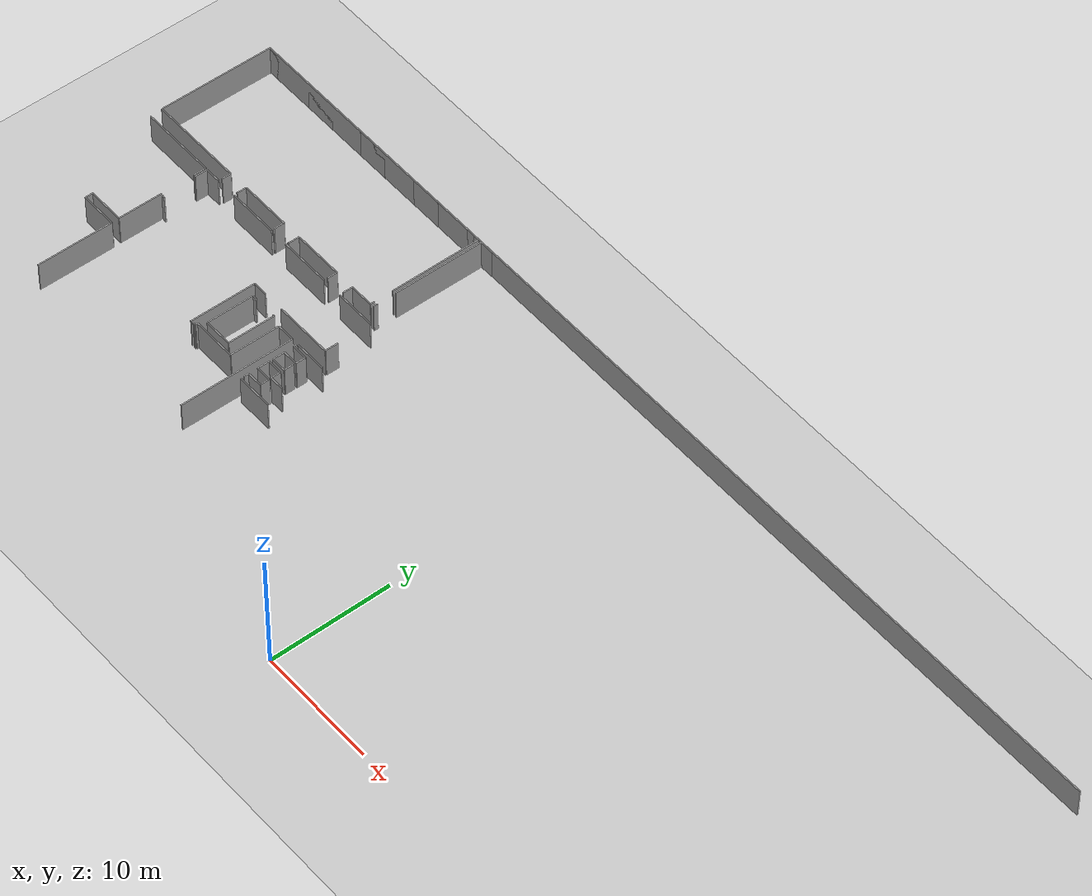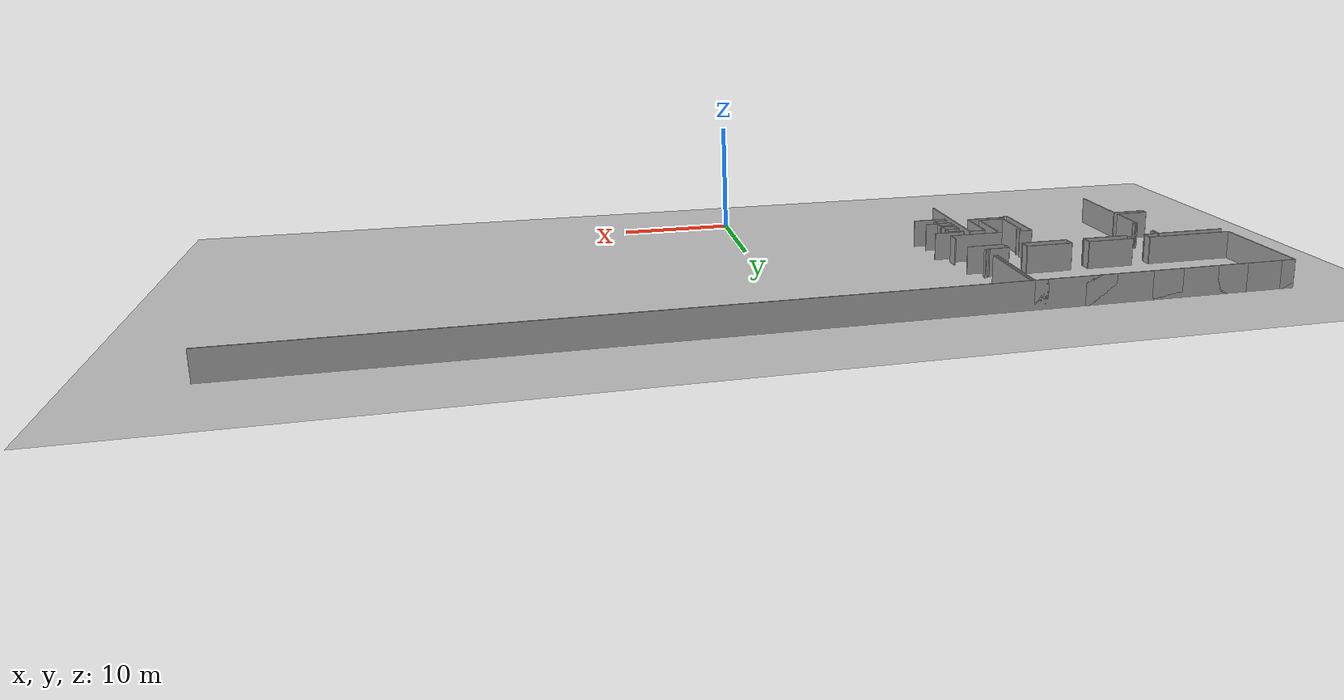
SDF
<sdf version="1.6">
 <world name="default">
  <model name="ground_plane">
   <static>1</static>
   <link name="link">
    <collision name="collision">
     <geometry><plane><normal>0 0 1</normal><size>100 100</size></plane></geometry>
     <surface><friction><ode><mu>100</mu><mu2>50</mu2></ode></friction></surface>
    </collision>
    <visual name="visual">
     <cast_shadows>0</cast_shadows>
     <geometry><plane><normal>0 0 1</normal><size>100 100</size></plane></geometry>
     <material>
      <script><uri>file://media/materials/scripts/gazebo.material</uri><name>Gazebo/Grey</name></script>
     </material>
    </visual>
   </link>
  </model>
  <model name="50052750">
   <static>1</static>
   <link name="Wall_0">
    <collision name="Wall_0_Collision">
     <geometry><box><size>8.04141937434 0.1 2.5</size></box></geometry>
     <pose>4.02070968717 0 1.25 0 0 0</pose>
    </collision>
    <visual name="Wall_0_Visual">
     <pose>4.02070968717 0 1.25 0 0 0</pose>
     <geometry><box><size>8.04141937434 0.1 2.5</size></box></geometry>
     <material>
      <script><uri>file://media/materials/scripts/gazebo.material</uri><name>Gazebo/Grey</name></script>
      <ambient>1 1 1 1</ambient>
     </material>
    </visual>
    <pose>0.0 -9.54365278443 0 0 0 0.0</pose>
   </link>
   <link name="Wall_1">
    <collision name="Wall_1_Collision">
     <geometry><box><size>0.776772027063 0.1 2.5</size></box></geometry>
     <pose>0.388386013531 0 1.25 0 0 0</pose>
    </collision>
    <visual name="Wall_1_Visual">
     <pose>0.388386013531 0 1.25 0 0 0</pose>
     <geometry><box><size>0.776772027063 0.1 2.5</size></box></geometry>
     <material>
      <script><uri>file://media/materials/scripts/gazebo.material</uri><name>Gazebo/Grey</name></script>
      <ambient>1 1 1 1</ambient>
     </material>
    </visual>
    <pose>8.04141937434 -9.54365278443 0 0 0 -1.57079632679</pose>
   </link>
   <link name="Wall_2">
    <collision name="Wall_2_Collision">
     <geometry><box><size>0.820589284966 0.1 2.5</size></box></geometry>
     <pose>0.410294642483 0 1.25 0 0 0</pose>
    </collision>
    <visual name="Wall_2_Visual">
     <pose>0.410294642483 0 1.25 0 0 0</pose>
     <geometry><box><size>0.820589284966 0.1 2.5</size></box></geometry>
     <material>
      <script><uri>file://media/materials/scripts/gazebo.material</uri><name>Gazebo/Grey</name></script>
      <ambient>1 1 1 1</ambient>
     </material>
    </visual>
    <pose>9.7756937415 -10.3204248115 0 0 0 1.57079632679</pose>
   </link>
   <link name="Wall_3">
    <collision name="Wall_3_Collision">
     <geometry><box><size>4.30615689626 0.1 2.5</size></box></geometry>
     <pose>2.15307844813 0 1.25 0 0 0</pose>
    </collision>
    <visual name="Wall_3_Visual">
     <pose>2.15307844813 0 1.25 0 0 0</pose>
     <geometry><box><size>4.30615689626 0.1 2.5</size></box></geometry>
     <material>
      <script><uri>file://media/materials/scripts/gazebo.material</uri><name>Gazebo/Grey</name></script>
      <ambient>1 1 1 1</ambient>
     </material>
    </visual>
    <pose>9.7756937415 -9.49983552652 0 0 0 0.0</pose>
   </link>
   <link name="Wall_4">
    <collision name="Wall_4_Collision">
     <geometry><box><size>0.900476401549 0.1 2.5</size></box></geometry>
     <pose>0.450238200774 0 1.25 0 0 0</pose>
    </collision>
    <visual name="Wall_4_Visual">
     <pose>0.450238200774 0 1.25 0 0 0</pose>
     <geometry><box><size>0.900476401549 0.1 2.5</size></box></geometry>
     <material>
      <script><uri>file://media/materials/scripts/gazebo.material</uri><name>Gazebo/Grey</name></script>
      <ambient>1 1 1 1</ambient>
     </material>
    </visual>
    <pose>14.0818506378 -9.49983552652 0 0 0 -1.57079632679</pose>
   </link>
   <link name="Wall_5">
    <collision name="Wall_5_Collision">
     <geometry><box><size>0.054358801109 0.1 2.5</size></box></geometry>
     <pose>0.0271794005545 0 1.25 0 0 0</pose>
    </collision>
    <visual name="Wall_5_Visual">
     <pose>0.0271794005545 0 1.25 0 0 0</pose>
     <geometry><box><size>0.054358801109 0.1 2.5</size></box></geometry>
     <material>
      <script><uri>file://media/materials/scripts/gazebo.material</uri><name>Gazebo/Grey</name></script>
      <ambient>1 1 1 1</ambient>
     </material>
    </visual>
    <pose>14.0818506378 -10.4003119281 0 0 0 0.0</pose>
   </link>
   <link name="Wall_6">
    <collision name="Wall_6_Collision">
     <geometry><box><size>0.0820462278421 0.1 2.5</size></box></geometry>
     <pose>0.0410231139211 0 1.25 0 0 0</pose>
    </collision>
    <visual name="Wall_6_Visual">
     <pose>0.0410231139211 0 1.25 0 0 0</pose>
     <geometry><box><size>0.0820462278421 0.1 2.5</size></box></geometry>
     <material>
      <script><uri>file://media/materials/scripts/gazebo.material</uri><name>Gazebo/Grey</name></script>
      <ambient>1 1 1 1</ambient>
     </material>
    </visual>
    <pose>15.7047402653 -10.4003119281 0 0 0 0.0</pose>
   </link>
   <link name="Wall_7">
    <collision name="Wall_7_Collision">
     <geometry><box><size>0.920670442148 0.1 2.5</size></box></geometry>
     <pose>0.460335221074 0 1.25 0 0 0</pose>
    </collision>
    <visual name="Wall_7_Visual">
     <pose>0.460335221074 0 1.25 0 0 0</pose>
     <geometry><box><size>0.920670442148 0.1 2.5</size></box></geometry>
     <material>
      <script><uri>file://media/materials/scripts/gazebo.material</uri><name>Gazebo/Grey</name></script>
      <ambient>1 1 1 1</ambient>
     </material>
    </visual>
    <pose>15.7867864931 -10.4003119281 0 0 0 1.57079632679</pose>
   </link>
   <link name="Wall_8">
    <collision name="Wall_8_Collision">
     <geometry><box><size>4.26907098523 0.1 2.5</size></box></geometry>
     <pose>2.13453549261 0 1.25 0 0 0</pose>
    </collision>
    <visual name="Wall_8_Visual">
     <pose>2.13453549261 0 1.25 0 0 0</pose>
     <geometry><box><size>4.26907098523 0.1 2.5</size></box></geometry>
     <material>
      <script><uri>file://media/materials/scripts/gazebo.material</uri><name>Gazebo/Grey</name></script>
      <ambient>1 1 1 1</ambient>
     </material>
    </visual>
    <pose>15.7867864931 -9.47964148593 0 0 0 0.0</pose>
   </link>
   <link name="Wall_9">
    <collision name="Wall_9_Collision">
     <geometry><box><size>0.820335271877 0.1 2.5</size></box></geometry>
     <pose>0.410167635938 0 1.25 0 0 0</pose>
    </collision>
    <visual name="Wall_9_Visual">
     <pose>0.410167635938 0 1.25 0 0 0</pose>
     <geometry><box><size>0.820335271877 0.1 2.5</size></box></geometry>
     <material>
      <script><uri>file://media/materials/scripts/gazebo.material</uri><name>Gazebo/Grey</name></script>
      <ambient>1 1 1 1</ambient>
     </material>
    </visual>
    <pose>20.0558574783 -9.47964148593 0 0 0 -1.57079632679</pose>
   </link>
   <link name="Wall_10">
    <collision name="Wall_10_Collision">
     <geometry><box><size>0.812333859564 0.1 2.5</size></box></geometry>
     <pose>0.406166929782 0 1.25 0 0 0</pose>
    </collision>
    <visual name="Wall_10_Visual">
     <pose>0.406166929782 0 1.25 0 0 0</pose>
     <geometry><box><size>0.812333859564 0.1 2.5</size></box></geometry>
     <material>
      <script><uri>file://media/materials/scripts/gazebo.material</uri><name>Gazebo/Grey</name></script>
      <ambient>1 1 1 1</ambient>
     </material>
    </visual>
    <pose>21.7924179633 -10.2999767578 0 0 0 1.57079632679</pose>
   </link>
   <link name="Wall_11">
    <collision name="Wall_11_Collision">
     <geometry><box><size>2.00556034652 0.1 2.5</size></box></geometry>
     <pose>1.00278017326 0 1.25 0 0 0</pose>
    </collision>
    <visual name="Wall_11_Visual">
     <pose>1.00278017326 0 1.25 0 0 0</pose>
     <geometry><box><size>2.00556034652 0.1 2.5</size></box></geometry>
     <material>
      <script><uri>file://media/materials/scripts/gazebo.material</uri><name>Gazebo/Grey</name></script>
      <ambient>1 1 1 1</ambient>
     </material>
    </visual>
    <pose>21.7924179633 -9.48764289824 0 0 0 0.0</pose>
   </link>
   <link name="Wall_12">
    <collision name="Wall_12_Collision">
     <geometry><box><size>0.361587632611 0.1 2.5</size></box></geometry>
     <pose>0.180793816305 0 1.25 0 0 0</pose>
    </collision>
    <visual name="Wall_12_Visual">
     <pose>0.180793816305 0 1.25 0 0 0</pose>
     <geometry><box><size>0.361587632611 0.1 2.5</size></box></geometry>
     <material>
      <script><uri>file://media/materials/scripts/gazebo.material</uri><name>Gazebo/Grey</name></script>
      <ambient>1 1 1 1</ambient>
     </material>
    </visual>
    <pose>23.7979783098 -9.48764289824 0 0 0 1.57079632679</pose>
   </link>
   <link name="Wall_13">
    <collision name="Wall_13_Collision">
     <geometry><box><size>7.55206315781 0.1 2.5</size></box></geometry>
     <pose>3.77603157891 0 1.25 0 0 0</pose>
    </collision>
    <visual name="Wall_13_Visual">
     <pose>3.77603157891 0 1.25 0 0 0</pose>
     <geometry><box><size>7.55206315781 0.1 2.5</size></box></geometry>
     <material>
      <script><uri>file://media/materials/scripts/gazebo.material</uri><name>Gazebo/Grey</name></script>
      <ambient>1 1 1 1</ambient>
     </material>
    </visual>
    <pose>23.7979783098 -7.55206315781 0 0 0 1.57079632679</pose>
   </link>
   <link name="Wall_14">
    <collision name="Wall_14_Collision">
     <geometry><box><size>1.20580013488 0.1 2.5</size></box></geometry>
     <pose>0.60290006744 0 1.25 0 0 0</pose>
    </collision>
    <visual name="Wall_14_Visual">
     <pose>0.60290006744 0 1.25 0 0 0</pose>
     <geometry><box><size>1.20580013488 0.1 2.5</size></box></geometry>
     <material>
      <script><uri>file://media/materials/scripts/gazebo.material</uri><name>Gazebo/Grey</name></script>
      <ambient>1 1 1 1</ambient>
     </material>
    </visual>
    <pose>23.7979783098 -0.0 0 0 0 3.14159265359</pose>
   </link>
   <link name="Wall_15">
    <collision name="Wall_15_Collision">
     <geometry><box><size>2.73127574264 0.1 2.5</size></box></geometry>
     <pose>1.36563787132 0 1.25 0 0 0</pose>
    </collision>
    <visual name="Wall_15_Visual">
     <pose>1.36563787132 0 1.25 0 0 0</pose>
     <geometry><box><size>2.73127574264 0.1 2.5</size></box></geometry>
     <material>
      <script><uri>file://media/materials/scripts/gazebo.material</uri><name>Gazebo/Grey</name></script>
      <ambient>1 1 1 1</ambient>
     </material>
    </visual>
    <pose>19.2992794919 -0.0 0 0 0 3.14159265359</pose>
   </link>
   <link name="Wall_16">
    <collision name="Wall_16_Collision">
     <geometry><box><size>2.74588149527 0.1 2.5</size></box></geometry>
     <pose>1.37294074764 0 1.25 0 0 0</pose>
    </collision>
    <visual name="Wall_16_Visual">
     <pose>1.37294074764 0 1.25 0 0 0</pose>
     <geometry><box><size>2.74588149527 0.1 2.5</size></box></geometry>
     <material>
      <script><uri>file://media/materials/scripts/gazebo.material</uri><name>Gazebo/Grey</name></script>
      <ambient>1 1 1 1</ambient>
     </material>
    </visual>
    <pose>13.2817094065 -0.0 0 0 0 3.14159265359</pose>
   </link>
   <link name="Wall_17">
    <collision name="Wall_17_Collision">
     <geometry><box><size>2.74791359999 0.1 2.5</size></box></geometry>
     <pose>1.37395679999 0 1.25 0 0 0</pose>
    </collision>
    <visual name="Wall_17_Visual">
     <pose>1.37395679999 0 1.25 0 0 0</pose>
     <geometry><box><size>2.74791359999 0.1 2.5</size></box></geometry>
     <material>
      <script><uri>file://media/materials/scripts/gazebo.material</uri><name>Gazebo/Grey</name></script>
      <ambient>1 1 1 1</ambient>
     </material>
    </visual>
    <pose>7.27874507373 -0.0 0 0 0 3.14159265359</pose>
   </link>
   <link name="Wall_18">
    <collision name="Wall_18_Collision">
     <geometry><box><size>1.27565373444 0.1 2.5</size></box></geometry>
     <pose>0.637826867218 0 1.25 0 0 0</pose>
    </collision>
    <visual name="Wall_18_Visual">
     <pose>0.637826867218 0 1.25 0 0 0</pose>
     <geometry><box><size>1.27565373444 0.1 2.5</size></box></geometry>
     <material>
      <script><uri>file://media/materials/scripts/gazebo.material</uri><name>Gazebo/Grey</name></script>
      <ambient>1 1 1 1</ambient>
     </material>
    </visual>
    <pose>1.29495872922 -0.0 0 0 0 3.14159265359</pose>
   </link>
   <link name="Wall_19">
    <collision name="Wall_19_Collision">
     <geometry><box><size>9.54367230957 0.1 2.5</size></box></geometry>
     <pose>4.77183615479 0 1.25 0 0 0</pose>
    </collision>
    <visual name="Wall_19_Visual">
     <pose>4.77183615479 0 1.25 0 0 0</pose>
     <geometry><box><size>9.54367230957 0.1 2.5</size></box></geometry>
     <material>
      <script><uri>file://media/materials/scripts/gazebo.material</uri><name>Gazebo/Grey</name></script>
      <ambient>1 1 1 1</ambient>
     </material>
    </visual>
    <pose>0.0193049947864 -0.0 0 0 0 -1.57281913388</pose>
   </link>
   <link name="Wall_21">
    <collision name="Wall_21_Collision">
     <geometry><box><size>6.44736023247 0.1 2.5</size></box></geometry>
     <pose>3.22368011624 0 1.25 0 0 0</pose>
    </collision>
    <visual name="Wall_21_Visual">
     <pose>3.22368011624 0 1.25 0 0 0</pose>
     <geometry><box><size>6.44736023247 0.1 2.5</size></box></geometry>
     <material>
      <script><uri>file://media/materials/scripts/gazebo.material</uri><name>Gazebo/Grey</name></script>
      <ambient>1 1 1 1</ambient>
     </material>
    </visual>
    <pose>0.0762039267883 -10.5851064505 0 0 0 0.0</pose>
   </link>
   <link name="Wall_22">
    <collision name="Wall_22_Collision">
     <geometry><box><size>1.0499631046 0.1 2.5</size></box></geometry>
     <pose>0.524981552299 0 1.25 0 0 0</pose>
    </collision>
    <visual name="Wall_22_Visual">
     <pose>0.524981552299 0 1.25 0 0 0</pose>
     <geometry><box><size>1.0499631046 0.1 2.5</size></box></geometry>
     <material>
      <script><uri>file://media/materials/scripts/gazebo.material</uri><name>Gazebo/Grey</name></script>
      <ambient>1 1 1 1</ambient>
     </material>
    </visual>
    <pose>6.52356415926 -10.5851064505 0 0 0 -1.57079632679</pose>
   </link>
   <link name="Wall_23">
    <collision name="Wall_23_Collision">
     <geometry><box><size>3.68572992566 0.1 2.5</size></box></geometry>
     <pose>1.84286496283 0 1.25 0 0 0</pose>
    </collision>
    <visual name="Wall_23_Visual">
     <pose>1.84286496283 0 1.25 0 0 0</pose>
     <geometry><box><size>3.68572992566 0.1 2.5</size></box></geometry>
     <material>
      <script><uri>file://media/materials/scripts/gazebo.material</uri><name>Gazebo/Grey</name></script>
      <ambient>1 1 1 1</ambient>
     </material>
    </visual>
    <pose>6.52356415926 -14.4245142952 0 0 0 -1.57079632679</pose>
   </link>
   <link name="Wall_24">
    <collision name="Wall_24_Collision">
     <geometry><box><size>3.05349134641 0.1 2.5</size></box></geometry>
     <pose>1.5267456732 0 1.25 0 0 0</pose>
    </collision>
    <visual name="Wall_24_Visual">
     <pose>1.5267456732 0 1.25 0 0 0</pose>
     <geometry><box><size>3.05349134641 0.1 2.5</size></box></geometry>
     <material>
      <script><uri>file://media/materials/scripts/gazebo.material</uri><name>Gazebo/Grey</name></script>
      <ambient>1 1 1 1</ambient>
     </material>
    </visual>
    <pose>6.52356415926 -18.1102442209 0 0 0 3.14159265359</pose>
   </link>
   <link name="Wall_25">
    <collision name="Wall_25_Collision">
     <geometry><box><size>0.633889664334 0.1 2.5</size></box></geometry>
     <pose>0.316944832167 0 1.25 0 0 0</pose>
    </collision>
    <visual name="Wall_25_Visual">
     <pose>0.316944832167 0 1.25 0 0 0</pose>
     <geometry><box><size>0.633889664334 0.1 2.5</size></box></geometry>
     <material>
      <script><uri>file://media/materials/scripts/gazebo.material</uri><name>Gazebo/Grey</name></script>
      <ambient>1 1 1 1</ambient>
     </material>
    </visual>
    <pose>3.47007281285 -18.1102442209 0 0 0 -1.57079632679</pose>
   </link>
   <link name="Wall_26">
    <collision name="Wall_26_Collision">
     <geometry><box><size>3.08282985822 0.1 2.5</size></box></geometry>
     <pose>1.54141492911 0 1.25 0 0 0</pose>
    </collision>
    <visual name="Wall_26_Visual">
     <pose>1.54141492911 0 1.25 0 0 0</pose>
     <geometry><box><size>3.08282985822 0.1 2.5</size></box></geometry>
     <material>
      <script><uri>file://media/materials/scripts/gazebo.material</uri><name>Gazebo/Grey</name></script>
      <ambient>1 1 1 1</ambient>
     </material>
    </visual>
    <pose>3.47007281285 -18.7441338852 0 0 0 0.0</pose>
   </link>
   <link name="Wall_27">
    <collision name="Wall_27_Collision">
     <geometry><box><size>6.2710751485 0.1 2.5</size></box></geometry>
     <pose>3.13553757425 0 1.25 0 0 0</pose>
    </collision>
    <visual name="Wall_27_Visual">
     <pose>3.13553757425 0 1.25 0 0 0</pose>
     <geometry><box><size>6.2710751485 0.1 2.5</size></box></geometry>
     <material>
      <script><uri>file://media/materials/scripts/gazebo.material</uri><name>Gazebo/Grey</name></script>
      <ambient>1 1 1 1</ambient>
     </material>
    </visual>
    <pose>6.55290267107 -18.7441338852 0 0 0 -1.57079632679</pose>
   </link>
   <link name="Wall_30">
    <collision name="Wall_30_Collision">
     <geometry><box><size>0.265062658679 0.1 2.5</size></box></geometry>
     <pose>0.132531329339 0 1.25 0 0 0</pose>
    </collision>
    <visual name="Wall_30_Visual">
     <pose>0.132531329339 0 1.25 0 0 0</pose>
     <geometry><box><size>0.265062658679 0.1 2.5</size></box></geometry>
     <material>
      <script><uri>file://media/materials/scripts/gazebo.material</uri><name>Gazebo/Grey</name></script>
      <ambient>1 1 1 1</ambient>
     </material>
    </visual>
    <pose>6.95233825399 -14.49932115 0 0 0 3.14159265359</pose>
   </link>
   <link name="Wall_31">
    <collision name="Wall_31_Collision">
     <geometry><box><size>0.0863644503601 0.1 2.5</size></box></geometry>
     <pose>0.0431822251801 0 1.25 0 0 0</pose>
    </collision>
    <visual name="Wall_31_Visual">
     <pose>0.0431822251801 0 1.25 0 0 0</pose>
     <geometry><box><size>0.0863644503601 0.1 2.5</size></box></geometry>
     <material>
      <script><uri>file://media/materials/scripts/gazebo.material</uri><name>Gazebo/Grey</name></script>
      <ambient>1 1 1 1</ambient>
     </material>
    </visual>
    <pose>6.68727559531 -14.49932115 0 0 0 1.57079632679</pose>
   </link>
   <link name="Wall_32">
    <collision name="Wall_32_Collision">
     <geometry><box><size>1.05428132712 0.1 2.5</size></box></geometry>
     <pose>0.527140663558 0 1.25 0 0 0</pose>
    </collision>
    <visual name="Wall_32_Visual">
     <pose>0.527140663558 0 1.25 0 0 0</pose>
     <geometry><box><size>1.05428132712 0.1 2.5</size></box></geometry>
     <material>
      <script><uri>file://media/materials/scripts/gazebo.material</uri><name>Gazebo/Grey</name></script>
      <ambient>1 1 1 1</ambient>
     </material>
    </visual>
    <pose>6.68727559531 -11.6515804059 0 0 0 1.57079632679</pose>
   </link>
   <link name="Wall_33">
    <collision name="Wall_33_Collision">
     <geometry><box><size>1.3321716468 0.1 2.5</size></box></geometry>
     <pose>0.666085823402 0 1.25 0 0 0</pose>
    </collision>
    <visual name="Wall_33_Visual">
     <pose>0.666085823402 0 1.25 0 0 0</pose>
     <geometry><box><size>1.3321716468 0.1 2.5</size></box></geometry>
     <material>
      <script><uri>file://media/materials/scripts/gazebo.material</uri><name>Gazebo/Grey</name></script>
      <ambient>1 1 1 1</ambient>
     </material>
    </visual>
    <pose>6.68727559531 -10.5972990788 0 0 0 0.0</pose>
   </link>
   <link name="Wall_34">
    <collision name="Wall_34_Collision">
     <geometry><box><size>4.30221969338 0.1 2.5</size></box></geometry>
     <pose>2.15110984669 0 1.25 0 0 0</pose>
    </collision>
    <visual name="Wall_34_Visual">
     <pose>2.15110984669 0 1.25 0 0 0</pose>
     <geometry><box><size>4.30221969338 0.1 2.5</size></box></geometry>
     <material>
      <script><uri>file://media/materials/scripts/gazebo.material</uri><name>Gazebo/Grey</name></script>
      <ambient>1 1 1 1</ambient>
     </material>
    </visual>
    <pose>9.82040004521 -10.5972990788 0 0 0 0.0</pose>
   </link>
   <link name="Wall_35">
    <collision name="Wall_35_Collision">
     <geometry><box><size>4.32127067508 0.1 2.5</size></box></geometry>
     <pose>2.16063533754 0 1.25 0 0 0</pose>
    </collision>
    <visual name="Wall_35_Visual">
     <pose>2.16063533754 0 1.25 0 0 0</pose>
     <geometry><box><size>4.32127067508 0.1 2.5</size></box></geometry>
     <material>
      <script><uri>file://media/materials/scripts/gazebo.material</uri><name>Gazebo/Grey</name></script>
      <ambient>1 1 1 1</ambient>
     </material>
    </visual>
    <pose>15.7231562142 -10.5972990788 0 0 0 0.0</pose>
   </link>
   <link name="Wall_36">
    <collision name="Wall_36_Collision">
     <geometry><box><size>3.39551997114 0.1 2.5</size></box></geometry>
     <pose>1.69775998557 0 1.25 0 0 0</pose>
    </collision>
    <visual name="Wall_36_Visual">
     <pose>1.69775998557 0 1.25 0 0 0</pose>
     <geometry><box><size>3.39551997114 0.1 2.5</size></box></geometry>
     <material>
      <script><uri>file://media/materials/scripts/gazebo.material</uri><name>Gazebo/Grey</name></script>
      <ambient>1 1 1 1</ambient>
     </material>
    </visual>
    <pose>21.8179462788 -10.5972990788 0 0 0 0.0</pose>
   </link>
   <link name="Wall_38">
    <collision name="Wall_38_Collision">
     <geometry><box><size>1.07231625646 0.1 2.5</size></box></geometry>
     <pose>0.536158128228 0 1.25 0 0 0</pose>
    </collision>
    <visual name="Wall_38_Visual">
     <pose>0.536158128228 0 1.25 0 0 0</pose>
     <geometry><box><size>1.07231625646 0.1 2.5</size></box></geometry>
     <material>
      <script><uri>file://media/materials/scripts/gazebo.material</uri><name>Gazebo/Grey</name></script>
      <ambient>1 1 1 1</ambient>
     </material>
    </visual>
    <pose>25.2134662499 -13.4125261475 0 0 0 -1.57079632679</pose>
   </link>
   <link name="Wall_39">
    <collision name="Wall_39_Collision">
     <geometry><box><size>4.94398376348 0.1 2.5</size></box></geometry>
     <pose>2.47199188174 0 1.25 0 0 0</pose>
    </collision>
    <visual name="Wall_39_Visual">
     <pose>2.47199188174 0 1.25 0 0 0</pose>
     <geometry><box><size>4.94398376348 0.1 2.5</size></box></geometry>
     <material>
      <script><uri>file://media/materials/scripts/gazebo.material</uri><name>Gazebo/Grey</name></script>
      <ambient>1 1 1 1</ambient>
     </material>
    </visual>
    <pose>25.2134662499 -14.4848424039 0 0 0 3.14159265359</pose>
   </link>
   <link name="Wall_40">
    <collision name="Wall_40_Collision">
     <geometry><box><size>1.20795924614 0.1 2.5</size></box></geometry>
     <pose>0.60397962307 0 1.25 0 0 0</pose>
    </collision>
    <visual name="Wall_40_Visual">
     <pose>0.60397962307 0 1.25 0 0 0</pose>
     <geometry><box><size>1.20795924614 0.1 2.5</size></box></geometry>
     <material>
      <script><uri>file://media/materials/scripts/gazebo.material</uri><name>Gazebo/Grey</name></script>
      <ambient>1 1 1 1</ambient>
     </material>
    </visual>
    <pose>18.5179352292 -14.4848424039 0 0 0 3.14159265359</pose>
   </link>
   <link name="Wall_41">
    <collision name="Wall_41_Collision">
     <geometry><box><size>5.47690322482 0.1 2.5</size></box></geometry>
     <pose>2.73845161241 0 1.25 0 0 0</pose>
    </collision>
    <visual name="Wall_41_Visual">
     <pose>2.73845161241 0 1.25 0 0 0</pose>
     <geometry><box><size>5.47690322482 0.1 2.5</size></box></geometry>
     <material>
      <script><uri>file://media/materials/scripts/gazebo.material</uri><name>Gazebo/Grey</name></script>
      <ambient>1 1 1 1</ambient>
     </material>
    </visual>
    <pose>17.3099759831 -14.4848424039 0 0 0 -1.57079632679</pose>
   </link>
   <link name="Wall_48">
    <collision name="Wall_48_Collision">
     <geometry><box><size>0.0638842919576 0.1 2.5</size></box></geometry>
     <pose>0.0319421459788 0 1.25 0 0 0</pose>
    </collision>
    <visual name="Wall_48_Visual">
     <pose>0.0319421459788 0 1.25 0 0 0</pose>
     <geometry><box><size>0.0638842919576 0.1 2.5</size></box></geometry>
     <material>
      <script><uri>file://media/materials/scripts/gazebo.material</uri><name>Gazebo/Grey</name></script>
      <ambient>1 1 1 1</ambient>
     </material>
    </visual>
    <pose>17.5965027478 -19.9679689494 0 0 0 1.57079632679</pose>
   </link>
   <link name="Wall_49">
    <collision name="Wall_49_Collision">
     <geometry><box><size>0.154820977925 0.1 2.5</size></box></geometry>
     <pose>0.0774104889625 0 1.25 0 0 0</pose>
    </collision>
    <visual name="Wall_49_Visual">
     <pose>0.0774104889625 0 1.25 0 0 0</pose>
     <geometry><box><size>0.154820977925 0.1 2.5</size></box></geometry>
     <material>
      <script><uri>file://media/materials/scripts/gazebo.material</uri><name>Gazebo/Grey</name></script>
      <ambient>1 1 1 1</ambient>
     </material>
    </visual>
    <pose>17.5965027478 -19.9040846575 0 0 0 0.0</pose>
   </link>
   <link name="Wall_50">
    <collision name="Wall_50_Collision">
     <geometry><box><size>0.200543333998 0.1 2.5</size></box></geometry>
     <pose>0.100271666999 0 1.25 0 0 0</pose>
    </collision>
    <visual name="Wall_50_Visual">
     <pose>0.100271666999 0 1.25 0 0 0</pose>
     <geometry><box><size>0.200543333998 0.1 2.5</size></box></geometry>
     <material>
      <script><uri>file://media/materials/scripts/gazebo.material</uri><name>Gazebo/Grey</name></script>
      <ambient>1 1 1 1</ambient>
     </material>
    </visual>
    <pose>17.7513237257 -19.9040846575 0 0 0 1.57079632679</pose>
   </link>
   <link name="Wall_51">
    <collision name="Wall_51_Collision">
     <geometry><box><size>3.70833709061 0.1 2.5</size></box></geometry>
     <pose>1.85416854531 0 1.25 0 0 0</pose>
    </collision>
    <visual name="Wall_51_Visual">
     <pose>1.85416854531 0 1.25 0 0 0</pose>
     <geometry><box><size>3.70833709061 0.1 2.5</size></box></geometry>
     <material>
      <script><uri>file://media/materials/scripts/gazebo.material</uri><name>Gazebo/Grey</name></script>
      <ambient>1 1 1 1</ambient>
     </material>
    </visual>
    <pose>17.7513237257 -19.7035413235 0 0 0 0.0</pose>
   </link>
   <link name="Wall_52">
    <collision name="Wall_52_Collision">
     <geometry><box><size>4.13660315916 0.1 2.5</size></box></geometry>
     <pose>2.06830157958 0 1.25 0 0 0</pose>
    </collision>
    <visual name="Wall_52_Visual">
     <pose>2.06830157958 0 1.25 0 0 0</pose>
     <geometry><box><size>4.13660315916 0.1 2.5</size></box></geometry>
     <material>
      <script><uri>file://media/materials/scripts/gazebo.material</uri><name>Gazebo/Grey</name></script>
      <ambient>1 1 1 1</ambient>
     </material>
    </visual>
    <pose>21.4596608163 -19.7035413235 0 0 0 1.57079632679</pose>
   </link>
   <link name="Wall_53">
    <collision name="Wall_53_Collision">
     <geometry><box><size>1.51518807764 0.1 2.5</size></box></geometry>
     <pose>0.757594038821 0 1.25 0 0 0</pose>
    </collision>
    <visual name="Wall_53_Visual">
     <pose>0.757594038821 0 1.25 0 0 0</pose>
     <geometry><box><size>1.51518807764 0.1 2.5</size></box></geometry>
     <material>
      <script><uri>file://media/materials/scripts/gazebo.material</uri><name>Gazebo/Grey</name></script>
      <ambient>1 1 1 1</ambient>
     </material>
    </visual>
    <pose>21.4596608163 -15.5669381643 0 0 0 0.0</pose>
   </link>
   <link name="Wall_54">
    <collision name="Wall_54_Collision">
     <geometry><box><size>9.4588124126 0.1 2.5</size></box></geometry>
     <pose>4.7294062063 0 1.25 0 0 0</pose>
    </collision>
    <visual name="Wall_54_Visual">
     <pose>4.7294062063 0 1.25 0 0 0</pose>
     <geometry><box><size>9.4588124126 0.1 2.5</size></box></geometry>
     <material>
      <script><uri>file://media/materials/scripts/gazebo.material</uri><name>Gazebo/Grey</name></script>
      <ambient>1 1 1 1</ambient>
     </material>
    </visual>
    <pose>22.974848894 -15.5669381643 0 0 0 -1.57079632679</pose>
   </link>
   <link name="Wall_77">
    <collision name="Wall_77_Collision">
     <geometry><box><size>2.39127922262 0.1 2.5</size></box></geometry>
     <pose>1.19563961131 0 1.25 0 0 0</pose>
    </collision>
    <visual name="Wall_77_Visual">
     <pose>1.19563961131 0 1.25 0 0 0</pose>
     <geometry><box><size>2.39127922262 0.1 2.5</size></box></geometry>
     <material>
      <script><uri>file://media/materials/scripts/gazebo.material</uri><name>Gazebo/Grey</name></script>
      <ambient>1 1 1 1</ambient>
     </material>
    </visual>
    <pose>18.1154514892 -19.1570321619 0 0 0 0.0</pose>
   </link>
   <link name="Wall_78">
    <collision name="Wall_78_Collision">
     <geometry><box><size>3.90735634607 0.1 2.5</size></box></geometry>
     <pose>1.95367817304 0 1.25 0 0 0</pose>
    </collision>
    <visual name="Wall_78_Visual">
     <pose>1.95367817304 0 1.25 0 0 0</pose>
     <geometry><box><size>3.90735634607 0.1 2.5</size></box></geometry>
     <material>
      <script><uri>file://media/materials/scripts/gazebo.material</uri><name>Gazebo/Grey</name></script>
      <ambient>1 1 1 1</ambient>
     </material>
    </visual>
    <pose>20.5067307118 -19.1570321619 0 0 0 1.57079632679</pose>
   </link>
   <link name="Wall_79">
    <collision name="Wall_79_Collision">
     <geometry><box><size>0.129038649362 0.1 2.5</size></box></geometry>
     <pose>0.0645193246808 0 1.25 0 0 0</pose>
    </collision>
    <visual name="Wall_79_Visual">
     <pose>0.0645193246808 0 1.25 0 0 0</pose>
     <geometry><box><size>0.129038649362 0.1 2.5</size></box></geometry>
     <material>
      <script><uri>file://media/materials/scripts/gazebo.material</uri><name>Gazebo/Grey</name></script>
      <ambient>1 1 1 1</ambient>
     </material>
    </visual>
    <pose>20.5067307118 -15.2496758158 0 0 0 3.14159265359</pose>
   </link>
   <link name="Wall_80">
    <collision name="Wall_80_Collision">
     <geometry><box><size>0.341266585467 0.1 2.5</size></box></geometry>
     <pose>0.170633292734 0 1.25 0 0 0</pose>
    </collision>
    <visual name="Wall_80_Visual">
     <pose>0.170633292734 0 1.25 0 0 0</pose>
     <geometry><box><size>0.341266585467 0.1 2.5</size></box></geometry>
     <material>
      <script><uri>file://media/materials/scripts/gazebo.material</uri><name>Gazebo/Grey</name></script>
      <ambient>1 1 1 1</ambient>
     </material>
    </visual>
    <pose>18.4606552776 -15.2496758158 0 0 0 3.14159265359</pose>
   </link>
   <link name="Wall_81">
    <collision name="Wall_81_Collision">
     <geometry><box><size>3.90735832971 0.1 2.5</size></box></geometry>
     <pose>1.95367916486 0 1.25 0 0 0</pose>
    </collision>
    <visual name="Wall_81_Visual">
     <pose>1.95367916486 0 1.25 0 0 0</pose>
     <geometry><box><size>3.90735832971 0.1 2.5</size></box></geometry>
     <material>
      <script><uri>file://media/materials/scripts/gazebo.material</uri><name>Gazebo/Grey</name></script>
      <ambient>1 1 1 1</ambient>
     </material>
    </visual>
    <pose>18.1193886921 -15.2496758158 0 0 0 -1.571803965</pose>
   </link>
   <link name="Wall_106">
    <collision name="Wall_106_Collision">
     <geometry><box><size>1.18370099611 0.1 2.5</size></box></geometry>
     <pose>0.591850498056 0 1.25 0 0 0</pose>
    </collision>
    <visual name="Wall_106_Visual">
     <pose>0.591850498056 0 1.25 0 0 0</pose>
     <geometry><box><size>1.18370099611 0.1 2.5</size></box></geometry>
     <material>
      <script><uri>file://media/materials/scripts/gazebo.material</uri><name>Gazebo/Grey</name></script>
      <ambient>1 1 1 1</ambient>
     </material>
    </visual>
    <pose>24.1101603966 -0.0234962107597 0 0 0 0.0</pose>
   </link>
   <link name="Wall_115">
    <collision name="Wall_115_Collision">
     <geometry><box><size>0.359047501718 0.1 2.5</size></box></geometry>
     <pose>0.179523750859 0 1.25 0 0 0</pose>
    </collision>
    <visual name="Wall_115_Visual">
     <pose>0.179523750859 0 1.25 0 0 0</pose>
     <geometry><box><size>0.359047501718 0.1 2.5</size></box></geometry>
     <material>
      <script><uri>file://media/materials/scripts/gazebo.material</uri><name>Gazebo/Grey</name></script>
      <ambient>1 1 1 1</ambient>
     </material>
    </visual>
    <pose>24.0839970484 -9.47392619142 0 0 0 1.57079632679</pose>
   </link>
   <link name="Wall_116">
    <collision name="Wall_116_Collision">
     <geometry><box><size>7.51959499832 0.1 2.5</size></box></geometry>
     <pose>3.75979749916 0 1.25 0 0 0</pose>
    </collision>
    <visual name="Wall_116_Visual">
     <pose>3.75979749916 0 1.25 0 0 0</pose>
     <geometry><box><size>7.51959499832 0.1 2.5</size></box></geometry>
     <material>
      <script><uri>file://media/materials/scripts/gazebo.material</uri><name>Gazebo/Grey</name></script>
      <ambient>1 1 1 1</ambient>
     </material>
    </visual>
    <pose>24.0839970484 -7.54304569314 0 0 0 1.56731696375</pose>
   </link>
   <link name="Wall_294">
    <collision name="Wall_294_Collision">
     <geometry><box><size>0.982903649025 0.1 2.5</size></box></geometry>
     <pose>0.491451824513 0 1.25 0 0 0</pose>
    </collision>
    <visual name="Wall_294_Visual">
     <pose>0.491451824513 0 1.25 0 0 0</pose>
     <geometry><box><size>0.982903649025 0.1 2.5</size></box></geometry>
     <material>
      <script><uri>file://media/materials/scripts/gazebo.material</uri><name>Gazebo/Grey</name></script>
      <ambient>1 1 1 1</ambient>
     </material>
    </visual>
    <pose>23.5860043868 -17.7025532126 0 0 0 1.57079632679</pose>
   </link>
   <link name="Wall_295">
    <collision name="Wall_295_Collision">
     <geometry><box><size>1.27387564281 0.1 2.5</size></box></geometry>
     <pose>0.636937821406 0 1.25 0 0 0</pose>
    </collision>
    <visual name="Wall_295_Visual">
     <pose>0.636937821406 0 1.25 0 0 0</pose>
     <geometry><box><size>1.27387564281 0.1 2.5</size></box></geometry>
     <material>
      <script><uri>file://media/materials/scripts/gazebo.material</uri><name>Gazebo/Grey</name></script>
      <ambient>1 1 1 1</ambient>
     </material>
    </visual>
    <pose>23.5860043868 -16.7196495635 0 0 0 0.0</pose>
   </link>
   <link name="Wall_296">
    <collision name="Wall_296_Collision">
     <geometry><box><size>0.807126591233 0.1 2.5</size></box></geometry>
     <pose>0.403563295617 0 1.25 0 0 0</pose>
    </collision>
    <visual name="Wall_296_Visual">
     <pose>0.403563295617 0 1.25 0 0 0</pose>
     <geometry><box><size>0.807126591233 0.1 2.5</size></box></geometry>
     <material>
      <script><uri>file://media/materials/scripts/gazebo.material</uri><name>Gazebo/Grey</name></script>
      <ambient>1 1 1 1</ambient>
     </material>
    </visual>
    <pose>24.8598800296 -16.7196495635 0 0 0 1.57079632679</pose>
   </link>
   <link name="Wall_297">
    <collision name="Wall_297_Collision">
     <geometry><box><size>1.2849252122 0.1 2.5</size></box></geometry>
     <pose>0.642462606098 0 1.25 0 0 0</pose>
    </collision>
    <visual name="Wall_297_Visual">
     <pose>0.642462606098 0 1.25 0 0 0</pose>
     <geometry><box><size>1.2849252122 0.1 2.5</size></box></geometry>
     <material>
      <script><uri>file://media/materials/scripts/gazebo.material</uri><name>Gazebo/Grey</name></script>
      <ambient>1 1 1 1</ambient>
     </material>
    </visual>
    <pose>24.8598800296 -15.9125229723 0 0 0 3.14159265359</pose>
   </link>
   <link name="Wall_298">
    <collision name="Wall_298_Collision">
     <geometry><box><size>0.329454976815 0.1 2.5</size></box></geometry>
     <pose>0.164727488407 0 1.25 0 0 0</pose>
    </collision>
    <visual name="Wall_298_Visual">
     <pose>0.164727488407 0 1.25 0 0 0</pose>
     <geometry><box><size>0.329454976815 0.1 2.5</size></box></geometry>
     <material>
      <script><uri>file://media/materials/scripts/gazebo.material</uri><name>Gazebo/Grey</name></script>
      <ambient>1 1 1 1</ambient>
     </material>
    </visual>
    <pose>23.5749548174 -15.9125229723 0 0 0 1.57079632679</pose>
   </link>
   <link name="Wall_299">
    <collision name="Wall_299_Collision">
     <geometry><box><size>2.73749906333 0.1 2.5</size></box></geometry>
     <pose>1.36874953166 0 1.25 0 0 0</pose>
    </collision>
    <visual name="Wall_299_Visual">
     <pose>1.36874953166 0 1.25 0 0 0</pose>
     <geometry><box><size>2.73749906333 0.1 2.5</size></box></geometry>
     <material>
      <script><uri>file://media/materials/scripts/gazebo.material</uri><name>Gazebo/Grey</name></script>
      <ambient>1 1 1 1</ambient>
     </material>
    </visual>
    <pose>23.5749548174 -15.5830679955 0 0 0 0.0</pose>
   </link>
   <link name="Wall_305">
    <collision name="Wall_305_Collision">
     <geometry><box><size>0.801665309813 0.1 2.5</size></box></geometry>
     <pose>0.400832654907 0 1.25 0 0 0</pose>
    </collision>
    <visual name="Wall_305_Visual">
     <pose>0.400832654907 0 1.25 0 0 0</pose>
     <geometry><box><size>0.801665309813 0.1 2.5</size></box></geometry>
     <material>
      <script><uri>file://media/materials/scripts/gazebo.material</uri><name>Gazebo/Grey</name></script>
      <ambient>1 1 1 1</ambient>
     </material>
    </visual>
    <pose>24.8379078974 -16.9118104656 0 0 0 -1.57079632679</pose>
   </link>
   <link name="Wall_306">
    <collision name="Wall_306_Collision">
     <geometry><box><size>1.25195115807 0.1 2.5</size></box></geometry>
     <pose>0.625975579037 0 1.25 0 0 0</pose>
    </collision>
    <visual name="Wall_306_Visual">
     <pose>0.625975579037 0 1.25 0 0 0</pose>
     <geometry><box><size>1.25195115807 0.1 2.5</size></box></geometry>
     <material>
      <script><uri>file://media/materials/scripts/gazebo.material</uri><name>Gazebo/Grey</name></script>
      <ambient>1 1 1 1</ambient>
     </material>
    </visual>
    <pose>24.8379078974 -17.7134757754 0 0 0 3.13286811083</pose>
   </link>
   <link name="Wall_307">
    <collision name="Wall_307_Collision">
     <geometry><box><size>0.417343505711 0.1 2.5</size></box></geometry>
     <pose>0.208671752855 0 1.25 0 0 0</pose>
    </collision>
    <visual name="Wall_307_Visual">
     <pose>0.208671752855 0 1.25 0 0 0</pose>
     <geometry><box><size>0.417343505711 0.1 2.5</size></box></geometry>
     <material>
      <script><uri>file://media/materials/scripts/gazebo.material</uri><name>Gazebo/Grey</name></script>
      <ambient>1 1 1 1</ambient>
     </material>
    </visual>
    <pose>23.5749548174 -20.1789268201 0 0 0 1.57079632679</pose>
   </link>
   <link name="Wall_308">
    <collision name="Wall_308_Collision">
     <geometry><box><size>1.301436063 0.1 2.5</size></box></geometry>
     <pose>0.6507180315 0 1.25 0 0 0</pose>
    </collision>
    <visual name="Wall_308_Visual">
     <pose>0.6507180315 0 1.25 0 0 0</pose>
     <geometry><box><size>1.301436063 0.1 2.5</size></box></geometry>
     <material>
      <script><uri>file://media/materials/scripts/gazebo.material</uri><name>Gazebo/Grey</name></script>
      <ambient>1 1 1 1</ambient>
     </material>
    </visual>
    <pose>23.5749548174 -19.7615833144 0 0 0 0.0</pose>
   </link>
   <link name="Wall_309">
    <collision name="Wall_309_Collision">
     <geometry><box><size>0.76877061475 0.1 2.5</size></box></geometry>
     <pose>0.384385307375 0 1.25 0 0 0</pose>
    </collision>
    <visual name="Wall_309_Visual">
     <pose>0.384385307375 0 1.25 0 0 0</pose>
     <geometry><box><size>0.76877061475 0.1 2.5</size></box></geometry>
     <material>
      <script><uri>file://media/materials/scripts/gazebo.material</uri><name>Gazebo/Grey</name></script>
      <ambient>1 1 1 1</ambient>
     </material>
    </visual>
    <pose>24.8763908804 -19.7615833144 0 0 0 1.57079632679</pose>
   </link>
   <link name="Wall_310">
    <collision name="Wall_310_Collision">
     <geometry><box><size>1.29584777504 0.1 2.5</size></box></geometry>
     <pose>0.647923887518 0 1.25 0 0 0</pose>
    </collision>
    <visual name="Wall_310_Visual">
     <pose>0.647923887518 0 1.25 0 0 0</pose>
     <geometry><box><size>1.29584777504 0.1 2.5</size></box></geometry>
     <material>
      <script><uri>file://media/materials/scripts/gazebo.material</uri><name>Gazebo/Grey</name></script>
      <ambient>1 1 1 1</ambient>
     </material>
    </visual>
    <pose>24.8763908804 -18.9928126996 0 0 0 3.14159265359</pose>
   </link>
   <link name="Wall_311">
    <collision name="Wall_311_Collision">
     <geometry><box><size>0.961820562614 0.1 2.5</size></box></geometry>
     <pose>0.480910281307 0 1.25 0 0 0</pose>
    </collision>
    <visual name="Wall_311_Visual">
     <pose>0.480910281307 0 1.25 0 0 0</pose>
     <geometry><box><size>0.961820562614 0.1 2.5</size></box></geometry>
     <material>
      <script><uri>file://media/materials/scripts/gazebo.material</uri><name>Gazebo/Grey</name></script>
      <ambient>1 1 1 1</ambient>
     </material>
    </visual>
    <pose>23.5805431054 -18.9928126996 0 0 0 1.57079632679</pose>
   </link>
   <link name="Wall_312">
    <collision name="Wall_312_Collision">
     <geometry><box><size>1.26765232212 0.1 2.5</size></box></geometry>
     <pose>0.633826161062 0 1.25 0 0 0</pose>
    </collision>
    <visual name="Wall_312_Visual">
     <pose>0.633826161062 0 1.25 0 0 0</pose>
     <geometry><box><size>1.26765232212 0.1 2.5</size></box></geometry>
     <material>
      <script><uri>file://media/materials/scripts/gazebo.material</uri><name>Gazebo/Grey</name></script>
      <ambient>1 1 1 1</ambient>
     </material>
    </visual>
    <pose>23.5805431054 -18.030992137 0 0 0 0.0</pose>
   </link>
   <link name="Wall_313">
    <collision name="Wall_313_Collision">
     <geometry><box><size>0.784646432831 0.1 2.5</size></box></geometry>
     <pose>0.392323216415 0 1.25 0 0 0</pose>
    </collision>
    <visual name="Wall_313_Visual">
     <pose>0.392323216415 0 1.25 0 0 0</pose>
     <geometry><box><size>0.784646432831 0.1 2.5</size></box></geometry>
     <material>
      <script><uri>file://media/materials/scripts/gazebo.material</uri><name>Gazebo/Grey</name></script>
      <ambient>1 1 1 1</ambient>
     </material>
    </visual>
    <pose>24.8481954275 -18.030992137 0 0 0 -1.57079632679</pose>
   </link>
   <link name="Wall_314">
    <collision name="Wall_314_Collision">
     <geometry><box><size>1.17493754453 0.1 2.5</size></box></geometry>
     <pose>0.587468772266 0 1.25 0 0 0</pose>
    </collision>
    <visual name="Wall_314_Visual">
     <pose>0.587468772266 0 1.25 0 0 0</pose>
     <geometry><box><size>1.17493754453 0.1 2.5</size></box></geometry>
     <material>
      <script><uri>file://media/materials/scripts/gazebo.material</uri><name>Gazebo/Grey</name></script>
      <ambient>1 1 1 1</ambient>
     </material>
    </visual>
    <pose>24.8481954275 -18.8156385699 0 0 0 0.0</pose>
   </link>
   <link name="Wall_363">
    <collision name="Wall_363_Collision">
     <geometry><box><size>3.04803006499 0.1 2.5</size></box></geometry>
     <pose>1.52401503249 0 1.25 0 0 0</pose>
    </collision>
    <visual name="Wall_363_Visual">
     <pose>1.52401503249 0 1.25 0 0 0</pose>
     <geometry><box><size>3.04803006499 0.1 2.5</size></box></geometry>
     <material>
      <script><uri>file://media/materials/scripts/gazebo.material</uri><name>Gazebo/Grey</name></script>
      <ambient>1 1 1 1</ambient>
     </material>
    </visual>
    <pose>23.551077587 -20.4356070468 0 0 0 0.0</pose>
   </link>
   <link name="Wall_564">
    <collision name="Wall_564_Collision">
     <geometry><box><size>85.1197862226 0.1 2.5</size></box></geometry>
     <pose>42.5598931113 0 1.25 0 0 0</pose>
    </collision>
    <visual name="Wall_564_Visual">
     <pose>42.5598931113 0 1.25 0 0 0</pose>
     <geometry><box><size>85.1197862226 0.1 2.5</size></box></geometry>
     <material>
      <script><uri>file://media/materials/scripts/gazebo.material</uri><name>Gazebo/Grey</name></script>
      <ambient>1 1 1 1</ambient>
     </material>
    </visual>
   </link>
   <pose>-42.55 32.5101749388 0 0 0 0</pose>
  </model>
 </world>
</sdf>
